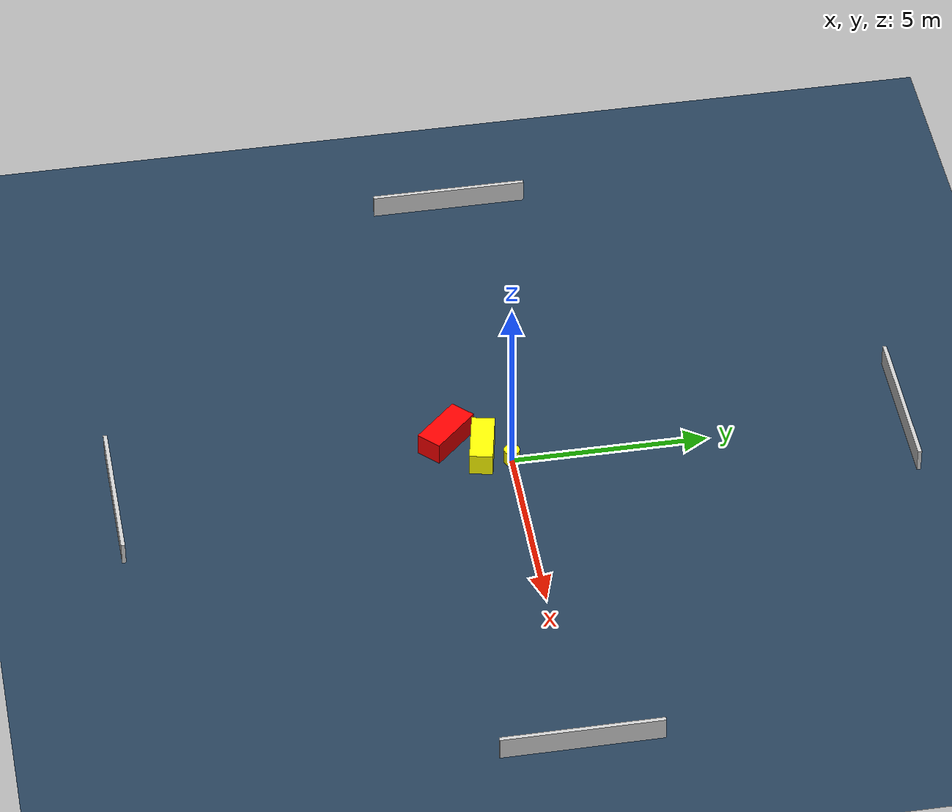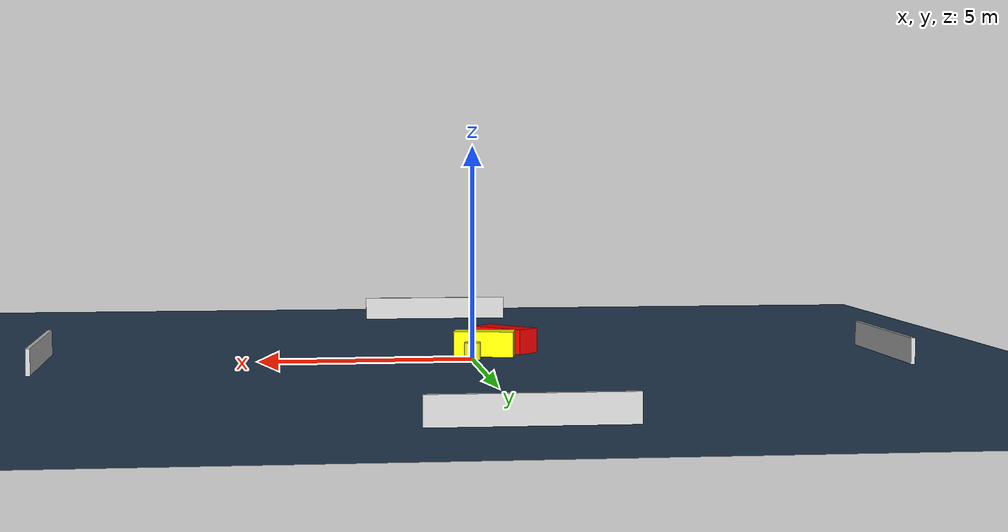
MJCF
<?xml version="1.0" ?>
<mujoco model="generated_environment">
  <option timestep="0.01" integrator="RK4" cone="elliptic"/>
  <default>
    <geom density="1"/>
  </default>
  <asset>
    <texture builtin="gradient" height="3072" name="skybox" rgb1="0.3 0.5 0.7" rgb2="0 0 0" type="skybox" width="512"/>
    <texture builtin="checker" height="300" name="groundplane" rgb1="0.2 0.3 0.4" rgb2="0.1 0.2 0.3" type="2d" width="300"/>
    <material name="groundplane" reflectance="0.2" texrepeat="5 5" texture="groundplane"/>
  </asset>
  <worldbody>
    <light dir="0 0 -1" directional="true" pos="0 0 1.5"/>
    <geom condim="3" friction="0.5 0.005 0.001" material="groundplane" name="floor" pos="0 0 0" size="0 0 0.05" type="plane"/>
    <body name="walls">
      <geom name="wall_1" condim="4" pos="-10.0 0.0 0.3" rgba="0.800000011920929 0.800000011920929 0.800000011920929 1.0" size="0.05 2.0 0.3" type="box"/>
      <geom name="wall_2" condim="4" pos="10.0 0.0 0.3" rgba="0.800000011920929 0.800000011920929 0.800000011920929 1.0" size="0.05 2.0 0.3" type="box"/>
      <geom name="wall_3" condim="4" pos="0.0 -10.0 0.3" rgba="0.800000011920929 0.800000011920929 0.800000011920929 1.0" size="2.0 0.05 0.3" type="box"/>
      <geom name="wall_4" condim="4" pos="0.0 10.0 0.3" rgba="0.800000011920929 0.800000011920929 0.800000011920929 1.0" size="2.0 0.05 0.3" type="box"/>
    </body>
    <body name="robot">
      <joint name="joint_x" type="slide" pos="0 0 0" axis="1 0 0"/>
      <joint name="joint_y" type="slide" pos="0 0 0" axis="0 1 0"/>
      <geom name="robot" type="cylinder" pos="0.0 0.0 0.2" size="0.2 0.2 0.0" mass="5.0" friction="1.0 0.005 0.0001" condim="4" rgba="1.0 1.0 0.0 1.0"/>
    </body>
    <body name="obstacle_1_movable">
      <geom name="obstacle_1_movable" condim="4" pos="-0.36256011904079927 -0.6915231965775152 0.3" euler="0 0 258.4122647771987" friction="0.0 0.005 0.001" rgba="1.0 1.0 0.0 1.0" size="0.295718039701424 0.7135252956087514 0.3" type="box" mass="0.1"/>
      <joint type="free"/>
    </body>
    <body name="obstacle_2_static">
      <geom name="obstacle_2_static" condim="4" pos="-0.9620607070787788 -1.5161039603406306 0.3" euler="0 0 314.3444780133976" friction="0.0 0.005 0.001" rgba="1.0 0.0 0.0 1.0" size="0.7298891231617 0.33379148347068033 0.3" type="box"/>
    </body>
  </worldbody>
  <actuator>
    <motor name="actuator_x" joint="joint_x" gear="1" ctrlrange="-1 1"/>
    <motor name="actuator_y" joint="joint_y" gear="1" ctrlrange="-1 1"/>
  </actuator>
</mujoco>
